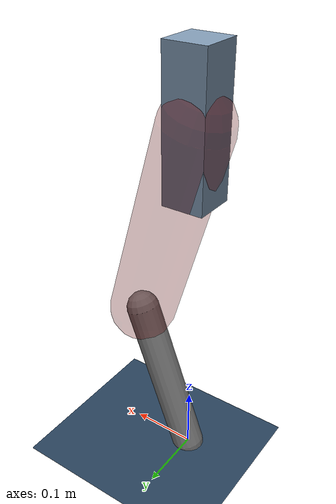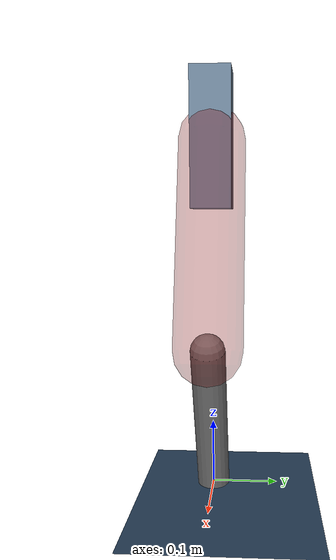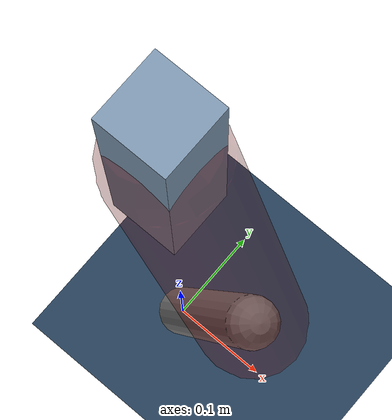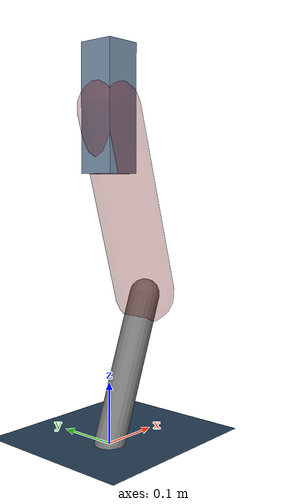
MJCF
<mujoco model="Hopper2D">
	<compiler inertiafromgeom="true" angle="radian" />
	<option timestep="0.001" integrator="implicit" cone="elliptic" solver="Newton" tolerance="1e-10" />

	<default>
		<geom contype="1" conaffinity="1" condim="3" friction="2 0.005 0.0001" solref="0.005 1" />
		<joint limited="true" damping="0.1" />
	</default>

	<asset>
		<texture name="skybox" type="skybox" builtin="gradient" rgb1=".4 .6 .8" rgb2="0 0 0" width="800" height="800" />
		<texture name="grid" type="2d" builtin="checker" rgb1=".1 .2 .3" rgb2=".2 .3 .4" width="300" height="300" mark="edge" markrgb=".2 .3 .4" />
		<material name="ground" texture="grid" texrepeat="1 1" texuniform="true" reflectance="0.1" />
		<material name="leg" rgba="0.5 0.6 0.7 1" />
	</asset>

	<worldbody>

		<geom name="floor" type="plane" size="5 5 0.25" material="ground" />

		<light directional="false" diffuse="0.8 0.8 0.8" specular="0.3 0.3 0.3" pos="0 0 2" dir="0 0 -1" />
		<light mode="targetbodycom" target="base" directional="false" diffuse="0.8 0.8 0.8" specular="0.3 0.3 0.3" pos="0 0 2" dir="0 0 -1" />

		<camera name="fixed" pos="0 -2 1" xyaxes="1 0 0 0 0 1" />
		<camera name="tracking" mode="trackcom" pos="0 -3 1" />

		<body name="root" pos="0 0 0.5339274043934754">
			<joint name="slide_x" type="slide" axis="1 0 0" range="-100 100" />
			<joint name="slide_z" type="slide" axis="0 0 1" range="0 10" />

			<body name="base" pos="0 0 0">
				<geom name="torso" type="box" size="0.03 0.03 0.1" mass="2.387" material="leg" />

				<body name="link1" pos="0 0 0" euler="0 1.2863479064776624 0">
					<joint type="hinge" axis="0 -1 0" pos="0 0 0" name="hinge1" limited="true" range="-3.14 3.14" stiffness="0" damping="0.1" />
					<geom name="thigh" type="capsule" fromto="0 0 0 0.31063766228409095 0 0" size="0.05" rgba="0.5 0 0 0.3" mass="1.0176216881670455" />

					<body name="link2" pos="0.31063766228409095 0 0" euler="0 0.6385967490858656 0">
						<joint type="hinge" axis="0 -1 0" pos="0 0 0" name="hinge2" limited="true" range="-3.14 3.14" stiffness="0" damping="0.1" />
						<geom name="shank" type="capsule" fromto="0 0 0 0.25137180961304323 0 0" size="0.025" mass="0.4436346286517389" />

					</body>
				</body>
			</body>
		</body>
	</worldbody>

	<actuator>
		<motor name="torque1" joint="hinge1" ctrlrange="-65.4618015489289 65.4618015489289" ctrllimited="true" gear="1" />
		<motor name="torque2" joint="hinge2" ctrlrange="-84.52078403603302 84.52078403603302" ctrllimited="true" gear="1" />
	</actuator>
</mujoco>
